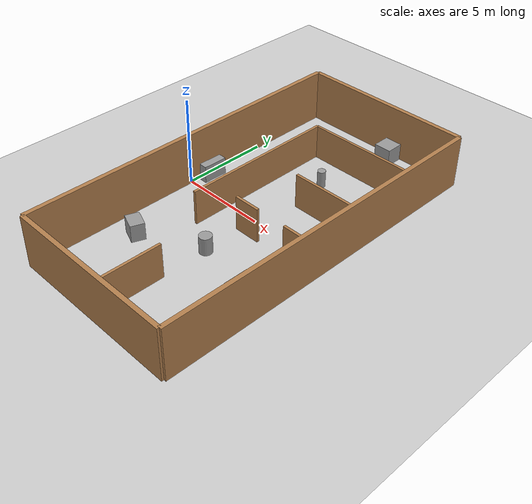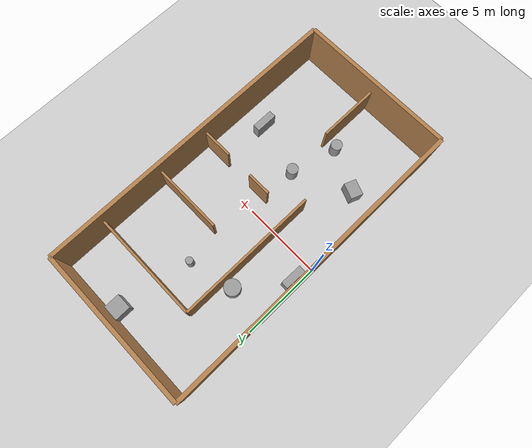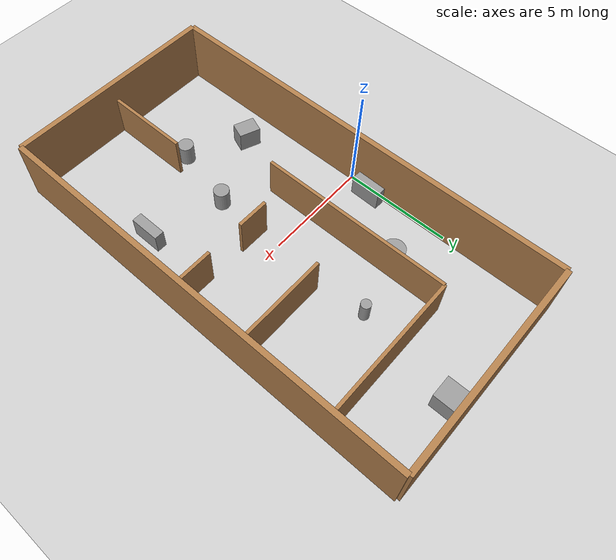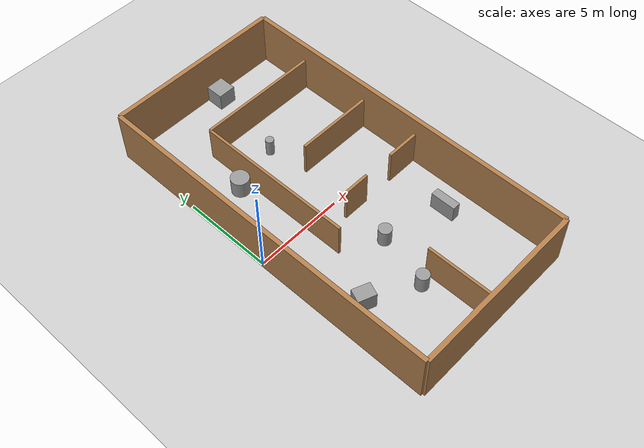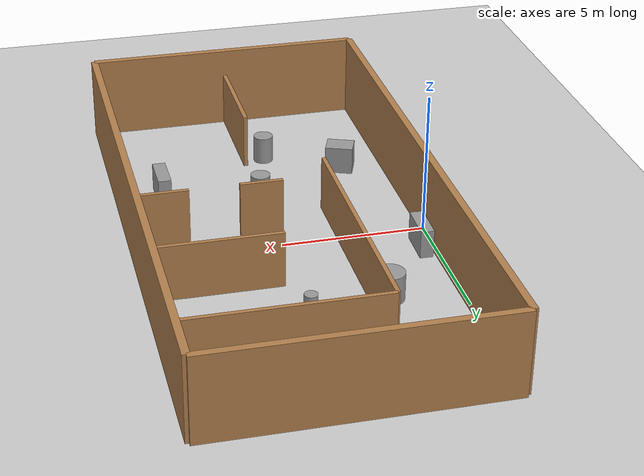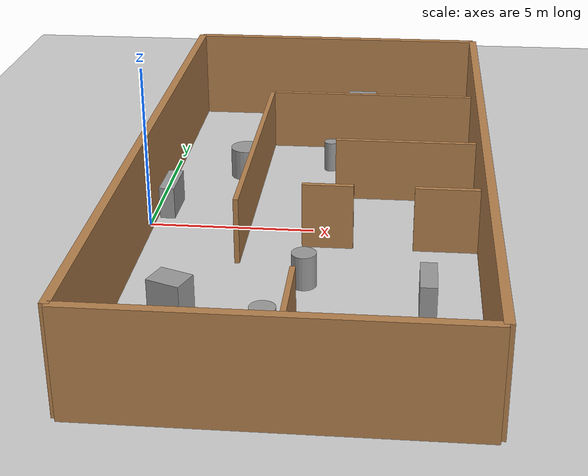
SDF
<sdf version="1.7">
 <world name="default">
  <plugin name="gazebo_ros_state" filename="libgazebo_ros_state.so">
   <ros><namespace>/test</namespace><argument>model_states:=model_states_demo</argument></ros>
   <update_rate>1.0</update_rate>
  </plugin>
  <model name="ground_plane">
   <static>1</static>
   <link name="link">
    <collision name="collision">
     <geometry><plane><normal>0 0 1</normal><size>100 100</size></plane></geometry>
     <surface>
      <contact><collide_bitmask>65535</collide_bitmask></contact>
      <friction><ode><mu>100</mu><mu2>50</mu2></ode></friction>
     </surface>
    </collision>
    <visual name="visual">
     <cast_shadows>0</cast_shadows>
     <geometry><plane><normal>0 0 1</normal><size>100 100</size></plane></geometry>
     <material>
      <script><uri>file://media/materials/scripts/gazebo.material</uri><name>Gazebo/Grey</name></script>
     </material>
    </visual>
   </link>
  </model>
  <light name="sun" type="directional">
   <cast_shadows>0</cast_shadows>
   <pose>0 0 10 0 -0 0</pose>
   <diffuse>0.8 0.8 0.8 1</diffuse>
   <specular>0.2 0.2 0.2 1</specular>
   <attenuation>
    <range>1000</range>
    <constant>0.9</constant>
    <linear>0.01</linear>
    <quadratic>0.001</quadratic>
   </attenuation>
   <direction>-0.5 0.1 -0.9</direction>
   <spot><inner_angle>0</inner_angle><outer_angle>0</outer_angle><falloff>0</falloff></spot>
  </light>
  <scene><shadows>0</shadows><ambient>0.4 0.4 0.4 1</ambient><background>0.7 0.7 0.7 1</background></scene>
  <physics type="ode">
   <real_time_update_rate>1000</real_time_update_rate>
   <max_step_size>0.001</max_step_size>
   <real_time_factor>1</real_time_factor>
   <ode>
    <solver>
     <type>quick</type>
     <iters>150</iters>
     <precon_iters>0</precon_iters>
     <sor>1.4</sor>
     <use_dynamic_moi_rescaling>1</use_dynamic_moi_rescaling>
    </solver>
    <constraints>
     <cfm>1e-05</cfm>
     <erp>0.2</erp>
     <contact_max_correcting_vel>2000</contact_max_correcting_vel>
     <contact_surface_layer>0.01</contact_surface_layer>
    </constraints>
   </ode>
  </physics>
  <gravity>0 0 -9.8</gravity>
  <magnetic_field>6e-06 2.3e-05 -4.2e-05</magnetic_field>
  <atmosphere type="adiabatic"/>
  <spherical_coordinates>
   <surface_model>EARTH_WGS84</surface_model>
   <latitude_deg>0</latitude_deg>
   <longitude_deg>0</longitude_deg>
   <elevation>0</elevation>
   <heading_deg>0</heading_deg>
  </spherical_coordinates>
  <model name="room_square">
   <static>1</static>
   <link name="Wall_1">
    <collision name="Wall_1_Collision"><geometry><box><size>20 0.25 3</size></box></geometry></collision>
    <visual name="Wall_1_Visual">
     <geometry><box><size>20 0.25 3</size></box></geometry>
     <material>
      <script><uri>file://media/materials/scripts/gazebo.material</uri><name>Gazebo/Wood</name></script>
      <ambient>1 1 1 1</ambient>
     </material>
    </visual>
    <pose>0 0 1.5 0 -0 1.5708</pose>
   </link>
   <link name="Wall_2">
    <collision name="Wall_2_Collision"><geometry><box><size>10 0.25 3</size></box></geometry></collision>
    <visual name="Wall_2_Visual">
     <geometry><box><size>10 0.25 3</size></box></geometry>
     <material>
      <script><uri>file://media/materials/scripts/gazebo.material</uri><name>Gazebo/Wood</name></script>
      <ambient>1 1 1 1</ambient>
     </material>
    </visual>
    <pose>5 10 1.5 0 -0 0</pose>
   </link>
   <link name="Wall_3">
    <collision name="Wall_3_Collision"><geometry><box><size>20 0.25 3</size></box></geometry></collision>
    <visual name="Wall_3_Visual">
     <geometry><box><size>20 0.25 3</size></box></geometry>
     <material>
      <script><uri>file://media/materials/scripts/gazebo.material</uri><name>Gazebo/Wood</name></script>
      <ambient>1 1 1 1</ambient>
     </material>
    </visual>
    <pose>10 0 1.5 0 0 -1.5708</pose>
   </link>
   <link name="Wall_4">
    <collision name="Wall_4_Collision"><geometry><box><size>10 0.25 3</size></box></geometry></collision>
    <visual name="Wall_4_Visual">
     <geometry><box><size>10 0.25 3</size></box></geometry>
     <material>
      <script><uri>file://media/materials/scripts/gazebo.material</uri><name>Gazebo/Wood</name></script>
      <ambient>1 1 1 1</ambient>
     </material>
    </visual>
    <pose>5 -10 1.5 0 -0 3.14159</pose>
   </link>
   <static>1</static>
  </model>
  <model name="inner_wall_1">
   <static>1</static>
   <link name="inner_wall_1">
    <collision name="inner_wall_1_collision"><geometry><box><size>4 0.15 2</size></box></geometry></collision>
    <visual name="inner_wall_1_visual">
     <geometry><box><size>4 0.15 2</size></box></geometry>
     <material>
      <script><uri>file://media/materials/scripts/gazebo.material</uri><name>Gazebo/Wood</name></script>
      <ambient>1 1 1 1</ambient>
     </material>
    </visual>
    <pose>0 0 1 0 0 -1.5708</pose>
   </link>
   <pose>5 -8 0 0 -0 0</pose>
  </model>
  <model name="inner_wall_2">
   <static>1</static>
   <link name="inner_wall_2">
    <collision name="inner_wall_2_collision"><geometry><box><size>2 0.15 2</size></box></geometry></collision>
    <visual name="inner_wall_2_visual">
     <geometry><box><size>2 0.15 2</size></box></geometry>
     <material>
      <script><uri>file://media/materials/scripts/gazebo.material</uri><name>Gazebo/Wood</name></script>
      <ambient>1 1 1 1</ambient>
     </material>
    </visual>
    <pose>0 0 1 0 -0 0</pose>
   </link>
   <pose>9 -1 0 0 -0 0</pose>
  </model>
  <model name="inner_wall_3">
   <static>1</static>
   <link name="inner_wall_3">
    <collision name="inner_wall_3_collision"><geometry><box><size>1.5 0.15 2</size></box></geometry></collision>
    <visual name="inner_wall_3_visual">
     <geometry><box><size>1.5 0.15 2</size></box></geometry>
     <material>
      <script><uri>file://media/materials/scripts/gazebo.material</uri><name>Gazebo/Wood</name></script>
      <ambient>1 1 1 1</ambient>
     </material>
    </visual>
    <pose>0 0 1 0 -0 0</pose>
   </link>
   <pose>5.5 -1 0 0 -0 0</pose>
  </model>
  <model name="inner_wall_4">
   <static>1</static>
   <link name="inner_wall_4">
    <collision name="inner_wall_4_collision"><geometry><box><size>9 0.15 2</size></box></geometry></collision>
    <visual name="inner_wall_4_visual">
     <geometry><box><size>9 0.15 2</size></box></geometry>
     <material>
      <script><uri>file://media/materials/scripts/gazebo.material</uri><name>Gazebo/Wood</name></script>
      <ambient>1 1 1 1</ambient>
     </material>
    </visual>
    <pose>0 0 1 0 -0 0</pose>
   </link>
   <pose>3 2.25 0 0 0 -1.5708</pose>
  </model>
  <model name="inner_wall_5">
   <static>1</static>
   <link name="inner_wall_5">
    <collision name="inner_wall_5_collision"><geometry><box><size>4.5 0.15 2</size></box></geometry></collision>
    <visual name="inner_wall_5_visual">
     <geometry><box><size>4.5 0.15 2</size></box></geometry>
     <material>
      <script><uri>file://media/materials/scripts/gazebo.material</uri><name>Gazebo/Wood</name></script>
      <ambient>1 1 1 1</ambient>
     </material>
    </visual>
    <pose>0 0 1 0 -0 0</pose>
   </link>
   <pose>7.75 2.5 0 0 -0 0</pose>
  </model>
  <model name="inner_wall_6">
   <static>1</static>
   <link name="inner_wall_6">
    <collision name="inner_wall_6_collision"><geometry><box><size>7 0.15 2</size></box></geometry></collision>
    <visual name="inner_wall_6_visual">
     <geometry><box><size>7 0.15 2</size></box></geometry>
     <material>
      <script><uri>file://media/materials/scripts/gazebo.material</uri><name>Gazebo/Wood</name></script>
      <ambient>1 1 1 1</ambient>
     </material>
    </visual>
    <pose>0 0 1 0 -0 0</pose>
   </link>
   <pose>6.5 6.75 0 0 -0 0</pose>
  </model>
  <audio><device>default</device></audio>
  <model name="unit_cylinder">
   <pose>2.40706 4.04469 0.499993 4e-06 4e-06 -0</pose>
   <static>1</static>
   <link name="link">
    <inertial>
     <mass>1</mass>
     <inertia><ixx>0.145833</ixx><ixy>0</ixy><ixz>0</ixz><iyy>0.145833</iyy><iyz>0</iyz><izz>0.125</izz></inertia>
    </inertial>
    <collision name="collision">
     <geometry><cylinder><radius>0.5</radius><length>1</length></cylinder></geometry>
    </collision>
    <visual name="visual">
     <geometry><cylinder><radius>0.5</radius><length>1</length></cylinder></geometry>
     <material>
      <script><name>Gazebo/Grey</name><uri>file://media/materials/scripts/gazebo.material</uri></script>
     </material>
    </visual>
   </link>
  </model>
  <model name="unit_cylinder_0">
   <static>1</static>
   <pose>4.26168 -6.35965 0.499994 -2e-06 -2e-06 0</pose>
   <link name="link">
    <inertial>
     <mass>1</mass>
     <inertia><ixx>0.145833</ixx><ixy>0</ixy><ixz>0</ixz><iyy>0.145833</iyy><iyz>0</iyz><izz>0.125</izz></inertia>
    </inertial>
    <collision name="collision">
     <geometry><cylinder><radius>0.353214</radius><length>1</length></cylinder></geometry>
    </collision>
    <visual name="visual">
     <geometry><cylinder><radius>0.353214</radius><length>1</length></cylinder></geometry>
     <material>
      <script><name>Gazebo/Grey</name><uri>file://media/materials/scripts/gazebo.material</uri></script>
     </material>
    </visual>
   </link>
  </model>
  <model name="unit_box_0">
   <static>1</static>
   <pose>1.64705 -5.02503 0.5 0 0 -0.372525</pose>
   <link name="link">
    <inertial>
     <mass>1</mass>
     <inertia>
      <ixx>0.166667</ixx>
      <ixy>0</ixy>
      <ixz>0</ixz>
      <iyy>0.166667</iyy>
      <iyz>0</iyz>
      <izz>0.166667</izz>
     </inertia>
    </inertial>
    <collision name="collision"><geometry><box><size>1 0.763976 1</size></box></geometry></collision>
    <visual name="visual">
     <geometry><box><size>1 0.763976 1</size></box></geometry>
     <material>
      <script><name>Gazebo/Grey</name><uri>file://media/materials/scripts/gazebo.material</uri></script>
     </material>
    </visual>
   </link>
  </model>
  <model name="unit_box_1">
   <static>1</static>
   <pose>8.42037 -4.32125 0.5 0 -0 0</pose>
   <link name="link">
    <inertial>
     <mass>1</mass>
     <inertia>
      <ixx>0.166667</ixx>
      <ixy>0</ixy>
      <ixz>0</ixz>
      <iyy>0.166667</iyy>
      <iyz>0</iyz>
      <izz>0.166667</izz>
     </inertia>
    </inertial>
    <collision name="collision"><geometry><box><size>0.464445 1.39821 1</size></box></geometry></collision>
    <visual name="visual">
     <geometry><box><size>0.464445 1.39821 1</size></box></geometry>
     <material>
      <script><name>Gazebo/Grey</name><uri>file://media/materials/scripts/gazebo.material</uri></script>
     </material>
    </visual>
   </link>
  </model>
  <model name="unit_box_1_clone_clone_clone_clone">
   <static>1</static>
   <pose>0.447991 1.1887 0.5 0 0 -0.024682</pose>
   <link name="link">
    <inertial>
     <mass>1</mass>
     <inertia>
      <ixx>0.166667</ixx>
      <ixy>0</ixy>
      <ixz>0</ixz>
      <iyy>0.166667</iyy>
      <iyz>0</iyz>
      <izz>0.166667</izz>
     </inertia>
    </inertial>
    <collision name="collision"><geometry><box><size>0.464445 1.39821 1</size></box></geometry></collision>
    <visual name="visual">
     <geometry><box><size>0.464445 1.39821 1</size></box></geometry>
     <material>
      <script><name>Gazebo/Grey</name><uri>file://media/materials/scripts/gazebo.material</uri></script>
     </material>
    </visual>
   </link>
  </model>
  <model name="unit_box">
   <static>1</static>
   <pose>6.00922 9.34653 0.5 0 -0 0</pose>
   <link name="link">
    <inertial>
     <mass>1</mass>
     <inertia>
      <ixx>0.166667</ixx>
      <ixy>0</ixy>
      <ixz>0</ixz>
      <iyy>0.166667</iyy>
      <iyz>0</iyz>
      <izz>0.166667</izz>
     </inertia>
    </inertial>
    <collision name="collision"><geometry><box><size>1 1 1</size></box></geometry></collision>
    <visual name="visual">
     <geometry><box><size>1 1 1</size></box></geometry>
     <material>
      <script><name>Gazebo/Grey</name><uri>file://media/materials/scripts/gazebo.material</uri></script>
     </material>
    </visual>
   </link>
  </model>
  <model name="unit_cylinder_0_clone_clone_clone_clone_0">
   <static>1</static>
   <pose>5.19276 4.75829 0.499999 1e-06 1e-06 0</pose>
   <link name="link">
    <inertial>
     <mass>1</mass>
     <inertia><ixx>0.145833</ixx><ixy>0</ixy><ixz>0</ixz><iyy>0.145833</iyy><iyz>0</iyz><izz>0.125</izz></inertia>
    </inertial>
    <collision name="collision">
     <geometry><cylinder><radius>0.226455</radius><length>1</length></cylinder></geometry>
    </collision>
    <visual name="visual">
     <geometry><cylinder><radius>0.226455</radius><length>1</length></cylinder></geometry>
     <material>
      <script><name>Gazebo/Grey</name><uri>file://media/materials/scripts/gazebo.material</uri></script>
     </material>
    </visual>
   </link>
  </model>
  <model name="unit_cylinder_0_clone">
   <static>1</static>
   <pose>5.02456 -3.3489 0.499994 -2e-06 -2e-06 0</pose>
   <link name="link">
    <inertial>
     <mass>1</mass>
     <inertia><ixx>0.145833</ixx><ixy>0</ixy><ixz>0</ixz><iyy>0.145833</iyy><iyz>0</iyz><izz>0.125</izz></inertia>
    </inertial>
    <collision name="collision">
     <geometry><cylinder><radius>0.353214</radius><length>1</length></cylinder></geometry>
    </collision>
    <visual name="visual">
     <geometry><cylinder><radius>0.353214</radius><length>1</length></cylinder></geometry>
     <material>
      <script><name>Gazebo/Grey</name><uri>file://media/materials/scripts/gazebo.material</uri></script>
     </material>
    </visual>
   </link>
  </model>
 </world>
</sdf>
